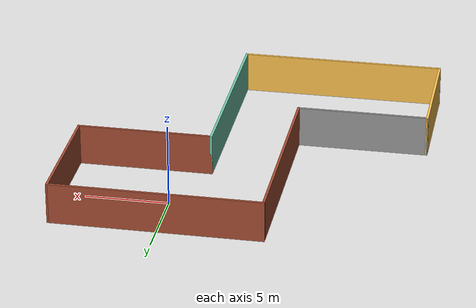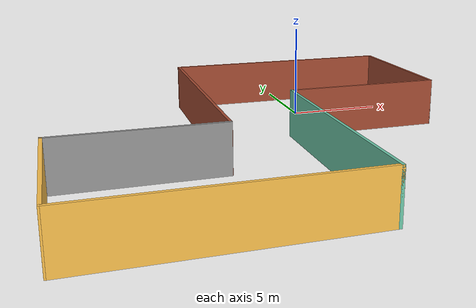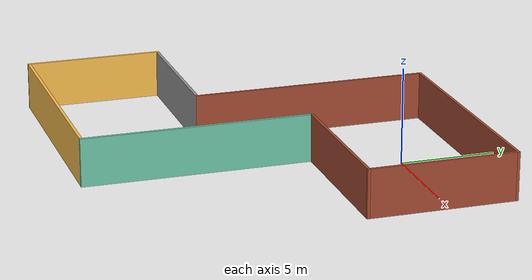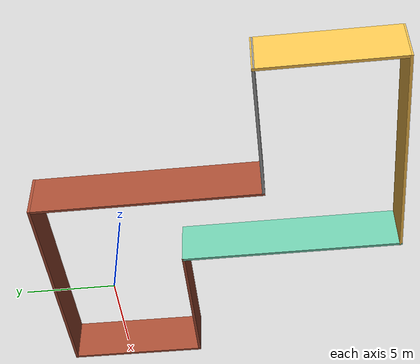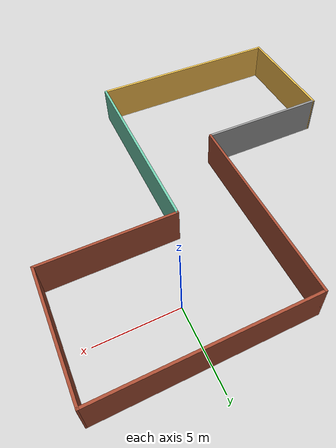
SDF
<?xml version='1.0'?>
<sdf version='1.6'>
  <model name='Building'>
    <pose frame=''>-3.87149 -6.28613 0 0 -0 0</pose>
    <link name='Wall_1'>
      <collision name='Wall_1_Collision'>
        <geometry>
          <box>
            <size>8.024 0.15 2.5</size>
          </box>
        </geometry>
        <pose frame=''>0 0 1.25 0 -0 0</pose>
      </collision>
      <visual name='Wall_1_Visual'>
        <pose frame=''>0 0 1.25 0 -0 0</pose>
        <geometry>
          <box>
            <size>8.024 0.15 2.5</size>
          </box>
        </geometry>
        <material>
          <script>
            <uri>file://media/materials/scripts/gazebo.material</uri>
            <name>Gazebo/Grey</name>
          </script>
          <ambient>1 1 1 1</ambient>
        </material>
        <meta>
          <layer>0</layer>
        </meta>
      </visual>
      <pose frame=''>-6.30551 -2.59086 0 0 -0 3.14159</pose>
    </link>
    <link name='Wall_2'>
      <collision name='Wall_2_Collision'>
        <geometry>
          <box>
            <size>7.285 0.15 2.5</size>
          </box>
        </geometry>
        <pose frame=''>0 0 1.25 0 -0 0</pose>
      </collision>
      <visual name='Wall_2_Visual'>
        <pose frame=''>0 0 1.25 0 -0 0</pose>
        <geometry>
          <box>
            <size>7.285 0.15 2.5</size>
          </box>
        </geometry>
        <material>
          <script>
            <uri>file://media/materials/scripts/gazebo.material</uri>
            <name>Gazebo/Grey</name>
          </script>
          <ambient>1 0.764706 0.305882 1</ambient>
        </material>
        <meta>
          <layer>0</layer>
        </meta>
      </visual>
      <pose frame=''>-10.2248 -6.15832 0 0 0 -1.56584</pose>
    </link>
    <link name='Wall_3'>
      <collision name='Wall_3_Collision'>
        <geometry>
          <box>
            <size>12.5 0.15 2.5</size>
          </box>
        </geometry>
        <pose frame=''>0 0 1.25 0 -0 0</pose>
      </collision>
      <visual name='Wall_3_Visual'>
        <pose frame=''>0 0 1.25 0 -0 0</pose>
        <geometry>
          <box>
            <size>12.5 0.15 2.5</size>
          </box>
        </geometry>
        <material>
          <script>
            <uri>file://media/materials/scripts/gazebo.material</uri>
            <name>Gazebo/Grey</name>
          </script>
          <ambient>1 0.764706 0.305882 1</ambient>
        </material>
        <meta>
          <layer>0</layer>
        </meta>
      </visual>
      <pose frame=''>-4.03216 -9.72578 0 0 -0 0</pose>
    </link>
    <link name='Wall_4'>
      <collision name='Wall_4_Collision'>
        <geometry>
          <box>
            <size>12 0.15 2.5</size>
          </box>
        </geometry>
        <pose frame=''>0 0 1.25 0 -0 0</pose>
      </collision>
      <visual name='Wall_4_Visual'>
        <pose frame=''>0 0 1.25 0 -0 0</pose>
        <geometry>
          <box>
            <size>12 0.15 2.5</size>
          </box>
        </geometry>
        <material>
          <script>
            <uri>file://media/materials/scripts/gazebo.material</uri>
            <name>Gazebo/Grey</name>
          </script>
          <ambient>0.435294 0.796078 0.67451 1</ambient>
        </material>
        <meta>
          <layer>0</layer>
        </meta>
      </visual>
      <pose frame=''>2.14284 -3.80078 0 0 -0 1.5708</pose>
    </link>
    <link name='Wall_5'>
      <collision name='Wall_5_Collision'>
        <geometry>
          <box>
            <size>8.25 0.15 2.5</size>
          </box>
        </geometry>
        <pose frame=''>0 0 1.25 0 -0 0</pose>
      </collision>
      <visual name='Wall_5_Visual'>
        <pose frame=''>0 0 1.25 0 -0 0</pose>
        <geometry>
          <box>
            <size>8.25 0.15 2.5</size>
          </box>
        </geometry>
        <material>
          <script>
            <uri>file://media/materials/scripts/gazebo.material</uri>
            <name>Gazebo/Bricks</name>
          </script>
          <ambient>1 1 1 1</ambient>
        </material>
        <meta>
          <layer>0</layer>
        </meta>
      </visual>
      <pose frame=''>6.19284 2.12422 0 0 -0 0</pose>
    </link>
    <link name='Wall_6'>
      <collision name='Wall_6_Collision'>
        <geometry>
          <box>
            <size>7.75 0.15 2.5</size>
          </box>
        </geometry>
        <pose frame=''>0 0 1.25 0 -0 0</pose>
      </collision>
      <visual name='Wall_6_Visual'>
        <pose frame=''>0 0 1.25 0 -0 0</pose>
        <geometry>
          <box>
            <size>7.75 0.15 2.5</size>
          </box>
        </geometry>
        <material>
          <script>
            <uri>file://media/materials/scripts/gazebo.material</uri>
            <name>Gazebo/Bricks</name>
          </script>
          <ambient>1 0.764706 0.305882 1</ambient>
        </material>
        <meta>
          <layer>0</layer>
        </meta>
      </visual>
      <pose frame=''>10.2428 5.92422 0 0 -0 1.5708</pose>
    </link>
    <link name='Wall_7'>
      <collision name='Wall_7_Collision'>
        <geometry>
          <box>
            <size>12.7504 0.15 2.5</size>
          </box>
        </geometry>
        <pose frame=''>0 0 1.25 0 -0 0</pose>
      </collision>
      <visual name='Wall_7_Visual'>
        <pose frame=''>0 0 1.25 0 -0 0</pose>
        <geometry>
          <box>
            <size>12.7504 0.15 2.5</size>
          </box>
        </geometry>
        <material>
          <script>
            <uri>file://media/materials/scripts/gazebo.material</uri>
            <name>Gazebo/Bricks</name>
          </script>
          <ambient>1 1 1 1</ambient>
        </material>
        <meta>
          <layer>0</layer>
        </meta>
      </visual>
      <pose frame=''>3.94267 9.72518 0 0 -0 3.14144</pose>
    </link>
    <link name='Wall_8'>
      <collision name='Wall_8_Collision'>
        <geometry>
          <box>
            <size>12.462 0.15 2.5</size>
          </box>
        </geometry>
        <pose frame=''>0 0 1.25 0 -0 0</pose>
      </collision>
      <visual name='Wall_8_Visual'>
        <pose frame=''>0 0 1.25 0 -0 0</pose>
        <geometry>
          <box>
            <size>12.462 0.15 2.5</size>
          </box>
        </geometry>
        <material>
          <script>
            <uri>file://media/materials/scripts/gazebo.material</uri>
            <name>Gazebo/Bricks</name>
          </script>
          <ambient>1 1 1 1</ambient>
        </material>
        <meta>
          <layer>0</layer>
        </meta>
      </visual>
      <pose frame=''>-2.35751 3.57013 0 0 0 -1.5708</pose>
    </link>
    <static>1</static>
  </model>
</sdf>
